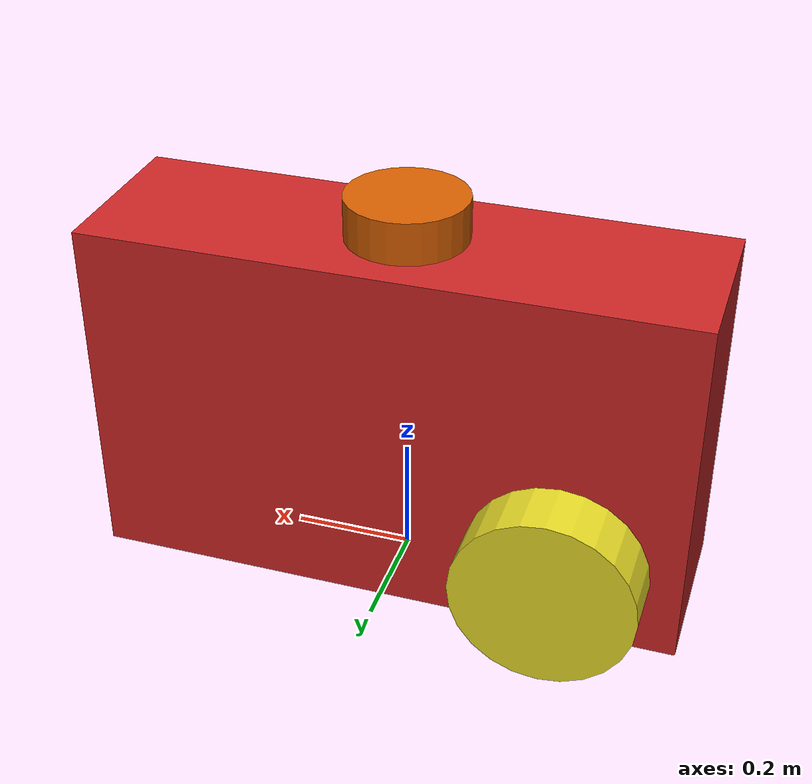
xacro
<?xml version="1.0"?>
<robot name="differential_drive_robot" xmlns:xacro="http://www.ros.org/wiki/xacro">

<xacro:property name="pi_const" value="3.14159265358979323846"/>

<xacro:property name="a" value="1.0"/>
<xacro:property name="b" value="0.3"/>
<xacro:property name="c" value="0.6"/>
<xacro:property name="r" value="0.15"/>
<xacro:property name="d" value="0.1"/>

<xacro:property name="s1" value="${b/2+r}"/>
<xacro:property name="s2" value="${2*r}"/>
<xacro:property name="s3" value="${2*r}"/>

<xacro:property name="s4" value="${b/2 + d/2 + 0.02}"/>

<xacro:property name="d1" value="50.0"/>
<xacro:property name="d2" value="50.0"/>
<xacro:property name="d3" value="50.0"/>

<xacro:property name="m1" value="${d1*a*b*c}"/>
<xacro:property name="m2" value="${d2*pi_const*r*r*d}"/>
<xacro:property name="m3" value="${d3*(4.0/3.0)*pi_const*r*r*r}"/>

<xacro:property name="Ix_body" value="${(1.0/12.0)*m1*(b*b+c*c)}"/>
<xacro:property name="Iy_body" value="${(1.0/12.0)*m1*(a*a+c*c)}"/>
<xacro:property name="Iz_body" value="${(1.0/12.0)*m1*(a*a+b*b)}"/>

<xacro:property name="Iz_wheel" value="${(1.0/2.0)*m2*r*r}"/>
<xacro:property name="I_wheel" value="${(1.0/12.0)*m2*(3.0*r*r+d*d)}"/>

<xacro:property name="I_caster" value="${(2.0/5.0)*m3*r*r}"/>

<xacro:macro name="inertia_body">
        <inertial>
        <origin rpy="0 0 0" xyz="0 0 ${s1}" />
        <mass value="${m1}" />
        <inertia ixx="${Ix_body}" ixy="0.0" ixz="0.0" iyy="${Iy_body}" iyz="0.0" izz="${Iz_body}" />
        </inertial>
</xacro:macro>

<xacro:macro name="inertia_wheel">
        <inertial>
        <origin rpy="1.570795 0 0" xyz="0 0 0" />
        <mass value="${m2}" />
        <inertia ixx="${I_wheel}" ixy="0.0" ixz="0.0" iyy="${I_wheel}" iyz="0.0" izz="${Iz_wheel}" />
        </inertial>
</xacro:macro>

<xacro:macro name="inertia_caster">
        <inertial>
        <origin rpy="0 0 0" xyz="0 0 0" />
        <mass value="${m3}" />
        <inertia ixx="${I_caster}" ixy="0.0" ixz="0.0" iyy="${I_caster}" iyz="0.0" izz="${I_caster}" />
        </inertial>
</xacro:macro>

<xacro:include filename="$(find mobile_robot)/model/robot.gazebo" />

<link name="base_footprint"></link>
<joint name="body_link_joint" type="fixed">
    <parent link="base_footprint"/>
    <child link="body_link"/>
</joint>

<link name="body_link">
    <visual>
        <geometry>
            <box size="${a} ${b} ${c}" />
        </geometry>
    <origin rpy="0.0 0.0 0.0" xyz="0.0 0.0 ${s1}"/>
    </visual>

    <collision>
        <geometry>
            <box size="${a} ${b} ${c}" />
        </geometry>
        <origin rpy="0 0 0" xyz="0 0 ${s1}" />
    </collision>
    <xacro:inertia_body/>
</link>

<joint name="wheel1_joint" type="continuous">
    <parent link="body_link"/>
    <child link="wheel1_link"/>
    <origin rpy="0 0 0" xyz="${-s2} ${-s4} ${r}"/>
    <axis xyz="0 1 0"/>
    <limit effort="100" velocity="10.0"/>
    <dynamics damping="1.0" friction="1.0"/>
</joint>

<link name="wheel1_link">
    <visual>
        <geometry>
            <cylinder radius="${r}" length="${d}"/>
        </geometry>
        <origin rpy="1.570795 0 0" xyz="0 0 0"/>
    </visual>

    <collision>
        <geometry>
            <cylinder radius="${r}" length="${d}"/>
        </geometry>
        <origin rpy="1.570795 0 0" xyz="0 0 0"/>
    </collision>
    <xacro:inertia_wheel/>
</link>

<joint name="wheel2_joint" type="continuous">
    <parent link="body_link"/>
    <child link="wheel2_link"/>
    <origin rpy="0 0 0" xyz="${-s2} ${s4} ${r}"/>
    <axis xyz="0 1 0"/>
    <limit effort="100" velocity="10.0"/>
    <dynamics damping="1.0" friction="1.0"/>
</joint>

<link name="wheel2_link">
    <visual>
        <geometry>
            <cylinder radius="${r}" length="${d}"/>
        </geometry>
        <origin rpy="1.570795 0 0" xyz="0 0 0"/>
    </visual>

    <collision>
        <geometry>
            <cylinder radius="${r}" length="${d}"/>
        </geometry>
        <origin rpy="1.570795 0 0" xyz="0 0 0"/>
    </collision>
    <xacro:inertia_wheel/>
</link>

<joint name="caster_joint" type="fixed">
    <parent link="body_link"/>
    <child link="caster_link"/>
    <origin rpy="0 0 0" xyz="${s3} 0 ${r}"/>
</joint>

<link name="caster_link">
    <visual>
        <geometry>
            <sphere radius="${r}"/>
        </geometry>
        <origin rpy="0 0 0" xyz="0 0 0"/>
    </visual>

    <collision>
        <geometry>
            <sphere radius="${r}"/>
        </geometry>
        <origin rpy="0 0 0" xyz="0 0 0"/>
    </collision>
    <xacro:inertia_caster/>
</link>

<joint name="lidar_joint" type="fixed">
    <parent link="body_link"/>
    <child link="lidar_link"/>
    <origin rpy="0 0 0" xyz="0.0 0 0.62"/>
    <axis xyz="0 1 0" rpy="0 0 0"/>
</joint>

<link name="lidar_link">
    <visual>
        <geometry>
            <cylinder radius="0.1" length="0.1"/>
        </geometry>
        <origin rpy="0 0 0" xyz="0 0 0"/>
    </visual>

    <collision>
        <geometry>
            <cylinder radius="0.1" length="0.1"/>
        </geometry>
        <origin rpy="0 0 0" xyz="0 0 0"/>
    </collision>
    <inertial>
        <mass value="0.1" />
        <origin xyz="0 0 0" rpy="0 0 0" />
        <inertia ixx="0.001" ixy="0" ixz="0"
                 iyy="0.001" iyz="0" izz="0.001" />
    </inertial>
</link>

<gazebo reference="caster_link">
    <mu1>0.0</mu1>
    <mu2>0.0</mu2>
</gazebo>

</robot>
